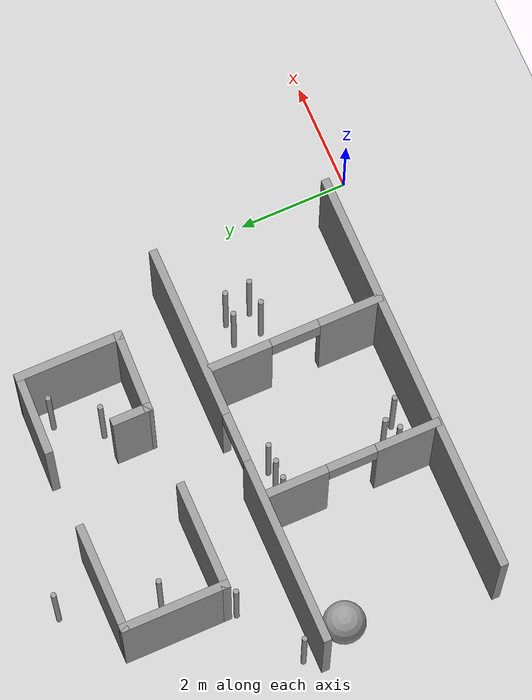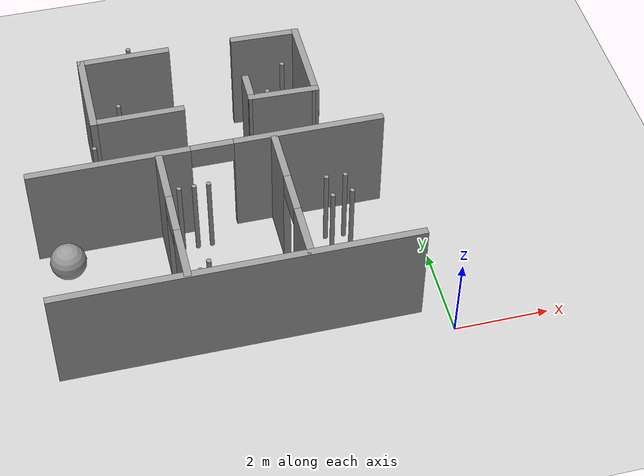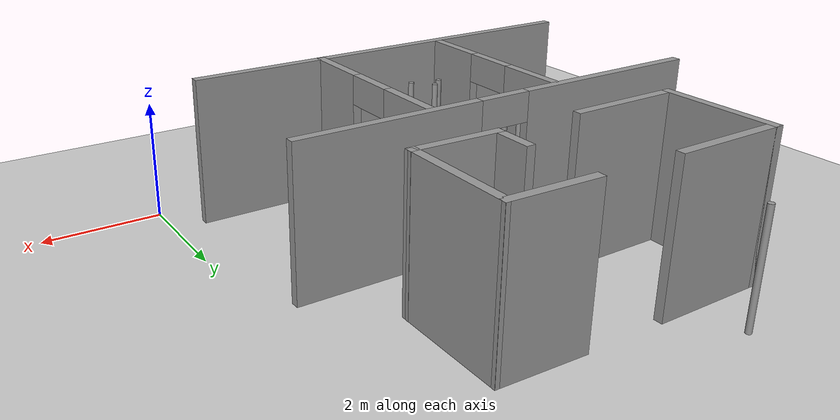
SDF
<sdf version="1.7">
 <world name="default">
  <model name="ground_plane">
   <static>1</static>
   <link name="link">
    <collision name="collision">
     <geometry><plane><normal>0 0 1</normal><size>100 100</size></plane></geometry>
     <surface>
      <contact><collide_bitmask>65535</collide_bitmask></contact>
      <friction><ode><mu>100</mu><mu2>50</mu2></ode></friction>
     </surface>
    </collision>
    <visual name="visual">
     <cast_shadows>0</cast_shadows>
     <geometry><plane><normal>0 0 1</normal><size>100 100</size></plane></geometry>
     <material>
      <script><uri>file://media/materials/scripts/gazebo.material</uri><name>Gazebo/Grey</name></script>
     </material>
    </visual>
   </link>
  </model>
  <model name="Untitled">
   <link name="Wall_10">
    <pose>-5.33751 2.0447 0 0 -0 1.5708</pose>
    <visual name="Wall_10_Visual_0">
     <pose>-1.02779 0 1.25 0 -0 0</pose>
     <geometry><box><size>1.19441 0.15 2.5</size></box></geometry>
     <material>
      <script><uri>file://media/materials/scripts/gazebo.material</uri><name>Gazebo/Grey</name></script>
      <ambient>1 1 1 1</ambient>
      <shader type="pixel"/>
     </material>
     <meta><layer>0</layer></meta>
    </visual>
    <visual name="Wall_10_Visual_1">
     <pose>1.04721 0 1.25 0 -0 0</pose>
     <geometry><box><size>1.15559 0.15 2.5</size></box></geometry>
     <material>
      <script><uri>file://media/materials/scripts/gazebo.material</uri><name>Gazebo/Grey</name></script>
      <ambient>1 1 1 1</ambient>
      <shader type="pixel"/>
     </material>
     <meta><layer>0</layer></meta>
    </visual>
    <visual name="Wall_10_Visual_2">
     <pose>0.019412 0 2.25 0 -0 0</pose>
     <geometry><box><size>0.9 0.15 0.5</size></box></geometry>
     <material>
      <script><uri>file://media/materials/scripts/gazebo.material</uri><name>Gazebo/Grey</name></script>
      <ambient>1 1 1 1</ambient>
      <shader type="pixel"/>
     </material>
     <meta><layer>0</layer></meta>
    </visual>
    <collision name="Wall_10_Collision_0">
     <pose>-1.02779 0 1.25 0 -0 0</pose>
     <geometry><box><size>1.19441 0.15 2.5</size></box></geometry>
     <surface>
      <friction>
       <ode><mu>1</mu><mu2>1</mu2><fdir1>0 0 0</fdir1><slip1>0</slip1><slip2>0</slip2></ode>
       <torsional>
        <coefficient>1</coefficient>
        <patch_radius>0</patch_radius>
        <surface_radius>0</surface_radius>
        <use_patch_radius>1</use_patch_radius>
        <ode><slip>0</slip></ode>
       </torsional>
      </friction>
      <bounce><restitution_coefficient>0</restitution_coefficient><threshold>1e+06</threshold></bounce>
      <contact>
       <collide_without_contact>0</collide_without_contact>
       <collide_without_contact_bitmask>1</collide_without_contact_bitmask>
       <collide_bitmask>1</collide_bitmask>
       <ode>
        <soft_cfm>0</soft_cfm>
        <soft_erp>0.2</soft_erp>
        <kp>1e+13</kp>
        <kd>1</kd>
        <max_vel>0.01</max_vel>
        <min_depth>0</min_depth>
       </ode>
       <bullet>
        <split_impulse>1</split_impulse>
        <split_impulse_penetration_threshold>-0.01</split_impulse_penetration_threshold>
        <soft_cfm>0</soft_cfm>
        <soft_erp>0.2</soft_erp>
        <kp>1e+13</kp>
        <kd>1</kd>
       </bullet>
      </contact>
     </surface>
    </collision>
    <collision name="Wall_10_Collision_1">
     <pose>1.04721 0 1.25 0 -0 0</pose>
     <geometry><box><size>1.15559 0.15 2.5</size></box></geometry>
     <surface>
      <friction>
       <ode><mu>1</mu><mu2>1</mu2><fdir1>0 0 0</fdir1><slip1>0</slip1><slip2>0</slip2></ode>
       <torsional>
        <coefficient>1</coefficient>
        <patch_radius>0</patch_radius>
        <surface_radius>0</surface_radius>
        <use_patch_radius>1</use_patch_radius>
        <ode><slip>0</slip></ode>
       </torsional>
      </friction>
      <bounce><restitution_coefficient>0</restitution_coefficient><threshold>1e+06</threshold></bounce>
      <contact>
       <collide_without_contact>0</collide_without_contact>
       <collide_without_contact_bitmask>1</collide_without_contact_bitmask>
       <collide_bitmask>1</collide_bitmask>
       <ode>
        <soft_cfm>0</soft_cfm>
        <soft_erp>0.2</soft_erp>
        <kp>1e+13</kp>
        <kd>1</kd>
        <max_vel>0.01</max_vel>
        <min_depth>0</min_depth>
       </ode>
       <bullet>
        <split_impulse>1</split_impulse>
        <split_impulse_penetration_threshold>-0.01</split_impulse_penetration_threshold>
        <soft_cfm>0</soft_cfm>
        <soft_erp>0.2</soft_erp>
        <kp>1e+13</kp>
        <kd>1</kd>
       </bullet>
      </contact>
     </surface>
    </collision>
    <collision name="Wall_10_Collision_2">
     <pose>0.019412 0 2.25 0 -0 0</pose>
     <geometry><box><size>0.9 0.15 0.5</size></box></geometry>
     <surface>
      <friction>
       <ode><mu>1</mu><mu2>1</mu2><fdir1>0 0 0</fdir1><slip1>0</slip1><slip2>0</slip2></ode>
       <torsional>
        <coefficient>1</coefficient>
        <patch_radius>0</patch_radius>
        <surface_radius>0</surface_radius>
        <use_patch_radius>1</use_patch_radius>
        <ode><slip>0</slip></ode>
       </torsional>
      </friction>
      <bounce><restitution_coefficient>0</restitution_coefficient><threshold>1e+06</threshold></bounce>
      <contact>
       <collide_without_contact>0</collide_without_contact>
       <collide_without_contact_bitmask>1</collide_without_contact_bitmask>
       <collide_bitmask>1</collide_bitmask>
       <ode>
        <soft_cfm>0</soft_cfm>
        <soft_erp>0.2</soft_erp>
        <kp>1e+13</kp>
        <kd>1</kd>
        <max_vel>0.01</max_vel>
        <min_depth>0</min_depth>
       </ode>
       <bullet>
        <split_impulse>1</split_impulse>
        <split_impulse_penetration_threshold>-0.01</split_impulse_penetration_threshold>
        <soft_cfm>0</soft_cfm>
        <soft_erp>0.2</soft_erp>
        <kp>1e+13</kp>
        <kd>1</kd>
       </bullet>
      </contact>
     </surface>
    </collision>
   </link>
   <link name="Wall_12">
    <pose>-2.91689 2.0447 0 0 -0 1.5708</pose>
    <visual name="Wall_12_Visual_0">
     <pose>-1.02779 0 1.25 0 -0 0</pose>
     <geometry><box><size>1.19441 0.15 2.5</size></box></geometry>
     <material>
      <script><uri>file://media/materials/scripts/gazebo.material</uri><name>Gazebo/Grey</name></script>
      <ambient>1 1 1 1</ambient>
      <shader type="pixel"/>
     </material>
     <meta><layer>0</layer></meta>
    </visual>
    <visual name="Wall_12_Visual_1">
     <pose>1.04721 0 1.25 0 -0 0</pose>
     <geometry><box><size>1.15559 0.15 2.5</size></box></geometry>
     <material>
      <script><uri>file://media/materials/scripts/gazebo.material</uri><name>Gazebo/Grey</name></script>
      <ambient>1 1 1 1</ambient>
      <shader type="pixel"/>
     </material>
     <meta><layer>0</layer></meta>
    </visual>
    <visual name="Wall_12_Visual_2">
     <pose>0.019412 0 2.25 0 -0 0</pose>
     <geometry><box><size>0.9 0.15 0.5</size></box></geometry>
     <material>
      <script><uri>file://media/materials/scripts/gazebo.material</uri><name>Gazebo/Grey</name></script>
      <ambient>1 1 1 1</ambient>
      <shader type="pixel"/>
     </material>
     <meta><layer>0</layer></meta>
    </visual>
    <collision name="Wall_12_Collision_0">
     <pose>-1.02779 0 1.25 0 -0 0</pose>
     <geometry><box><size>1.19441 0.15 2.5</size></box></geometry>
     <surface>
      <friction>
       <ode><mu>1</mu><mu2>1</mu2><fdir1>0 0 0</fdir1><slip1>0</slip1><slip2>0</slip2></ode>
       <torsional>
        <coefficient>1</coefficient>
        <patch_radius>0</patch_radius>
        <surface_radius>0</surface_radius>
        <use_patch_radius>1</use_patch_radius>
        <ode><slip>0</slip></ode>
       </torsional>
      </friction>
      <bounce><restitution_coefficient>0</restitution_coefficient><threshold>1e+06</threshold></bounce>
      <contact>
       <collide_without_contact>0</collide_without_contact>
       <collide_without_contact_bitmask>1</collide_without_contact_bitmask>
       <collide_bitmask>1</collide_bitmask>
       <ode>
        <soft_cfm>0</soft_cfm>
        <soft_erp>0.2</soft_erp>
        <kp>1e+13</kp>
        <kd>1</kd>
        <max_vel>0.01</max_vel>
        <min_depth>0</min_depth>
       </ode>
       <bullet>
        <split_impulse>1</split_impulse>
        <split_impulse_penetration_threshold>-0.01</split_impulse_penetration_threshold>
        <soft_cfm>0</soft_cfm>
        <soft_erp>0.2</soft_erp>
        <kp>1e+13</kp>
        <kd>1</kd>
       </bullet>
      </contact>
     </surface>
    </collision>
    <collision name="Wall_12_Collision_1">
     <pose>1.04721 0 1.25 0 -0 0</pose>
     <geometry><box><size>1.15559 0.15 2.5</size></box></geometry>
     <surface>
      <friction>
       <ode><mu>1</mu><mu2>1</mu2><fdir1>0 0 0</fdir1><slip1>0</slip1><slip2>0</slip2></ode>
       <torsional>
        <coefficient>1</coefficient>
        <patch_radius>0</patch_radius>
        <surface_radius>0</surface_radius>
        <use_patch_radius>1</use_patch_radius>
        <ode><slip>0</slip></ode>
       </torsional>
      </friction>
      <bounce><restitution_coefficient>0</restitution_coefficient><threshold>1e+06</threshold></bounce>
      <contact>
       <collide_without_contact>0</collide_without_contact>
       <collide_without_contact_bitmask>1</collide_without_contact_bitmask>
       <collide_bitmask>1</collide_bitmask>
       <ode>
        <soft_cfm>0</soft_cfm>
        <soft_erp>0.2</soft_erp>
        <kp>1e+13</kp>
        <kd>1</kd>
        <max_vel>0.01</max_vel>
        <min_depth>0</min_depth>
       </ode>
       <bullet>
        <split_impulse>1</split_impulse>
        <split_impulse_penetration_threshold>-0.01</split_impulse_penetration_threshold>
        <soft_cfm>0</soft_cfm>
        <soft_erp>0.2</soft_erp>
        <kp>1e+13</kp>
        <kd>1</kd>
       </bullet>
      </contact>
     </surface>
    </collision>
    <collision name="Wall_12_Collision_2">
     <pose>0.019412 0 2.25 0 -0 0</pose>
     <geometry><box><size>0.9 0.15 0.5</size></box></geometry>
     <surface>
      <friction>
       <ode><mu>1</mu><mu2>1</mu2><fdir1>0 0 0</fdir1><slip1>0</slip1><slip2>0</slip2></ode>
       <torsional>
        <coefficient>1</coefficient>
        <patch_radius>0</patch_radius>
        <surface_radius>0</surface_radius>
        <use_patch_radius>1</use_patch_radius>
        <ode><slip>0</slip></ode>
       </torsional>
      </friction>
      <bounce><restitution_coefficient>0</restitution_coefficient><threshold>1e+06</threshold></bounce>
      <contact>
       <collide_without_contact>0</collide_without_contact>
       <collide_without_contact_bitmask>1</collide_without_contact_bitmask>
       <collide_bitmask>1</collide_bitmask>
       <ode>
        <soft_cfm>0</soft_cfm>
        <soft_erp>0.2</soft_erp>
        <kp>1e+13</kp>
        <kd>1</kd>
        <max_vel>0.01</max_vel>
        <min_depth>0</min_depth>
       </ode>
       <bullet>
        <split_impulse>1</split_impulse>
        <split_impulse_penetration_threshold>-0.01</split_impulse_penetration_threshold>
        <soft_cfm>0</soft_cfm>
        <soft_erp>0.2</soft_erp>
        <kp>1e+13</kp>
        <kd>1</kd>
       </bullet>
      </contact>
     </surface>
    </collision>
   </link>
   <link name="Wall_14">
    <pose>-5.57091 4.91033 0 0 -0 3.14159</pose>
    <visual name="Wall_14_Visual">
     <pose>0 0 1.25 0 -0 0</pose>
     <geometry><box><size>2 0.15 2.5</size></box></geometry>
     <material>
      <script><uri>file://media/materials/scripts/gazebo.material</uri><name>Gazebo/Grey</name></script>
      <ambient>1 1 1 1</ambient>
      <shader type="pixel"/>
     </material>
     <meta><layer>0</layer></meta>
    </visual>
    <collision name="Wall_14_Collision">
     <pose>0 0 1.25 0 -0 0</pose>
     <geometry><box><size>2 0.15 2.5</size></box></geometry>
     <surface>
      <friction>
       <ode><mu>1</mu><mu2>1</mu2><fdir1>0 0 0</fdir1><slip1>0</slip1><slip2>0</slip2></ode>
       <torsional>
        <coefficient>1</coefficient>
        <patch_radius>0</patch_radius>
        <surface_radius>0</surface_radius>
        <use_patch_radius>1</use_patch_radius>
        <ode><slip>0</slip></ode>
       </torsional>
      </friction>
      <bounce><restitution_coefficient>0</restitution_coefficient><threshold>1e+06</threshold></bounce>
      <contact>
       <collide_without_contact>0</collide_without_contact>
       <collide_without_contact_bitmask>1</collide_without_contact_bitmask>
       <collide_bitmask>1</collide_bitmask>
       <ode>
        <soft_cfm>0</soft_cfm>
        <soft_erp>0.2</soft_erp>
        <kp>1e+13</kp>
        <kd>1</kd>
        <max_vel>0.01</max_vel>
        <min_depth>0</min_depth>
       </ode>
       <bullet>
        <split_impulse>1</split_impulse>
        <split_impulse_penetration_threshold>-0.01</split_impulse_penetration_threshold>
        <soft_cfm>0</soft_cfm>
        <soft_erp>0.2</soft_erp>
        <kp>1e+13</kp>
        <kd>1</kd>
       </bullet>
      </contact>
     </surface>
    </collision>
   </link>
   <link name="Wall_15">
    <pose>-6.49591 5.83533 0 0 -0 1.5708</pose>
    <visual name="Wall_15_Visual">
     <pose>0 0 1.25 0 -0 0</pose>
     <geometry><box><size>2 0.15 2.5</size></box></geometry>
     <material>
      <script><uri>file://media/materials/scripts/gazebo.material</uri><name>Gazebo/Grey</name></script>
      <ambient>1 1 1 1</ambient>
      <shader type="pixel"/>
     </material>
     <meta><layer>0</layer></meta>
    </visual>
    <collision name="Wall_15_Collision">
     <pose>0 0 1.25 0 -0 0</pose>
     <geometry><box><size>2 0.15 2.5</size></box></geometry>
     <surface>
      <friction>
       <ode><mu>1</mu><mu2>1</mu2><fdir1>0 0 0</fdir1><slip1>0</slip1><slip2>0</slip2></ode>
       <torsional>
        <coefficient>1</coefficient>
        <patch_radius>0</patch_radius>
        <surface_radius>0</surface_radius>
        <use_patch_radius>1</use_patch_radius>
        <ode><slip>0</slip></ode>
       </torsional>
      </friction>
      <bounce><restitution_coefficient>0</restitution_coefficient><threshold>1e+06</threshold></bounce>
      <contact>
       <collide_without_contact>0</collide_without_contact>
       <collide_without_contact_bitmask>1</collide_without_contact_bitmask>
       <collide_bitmask>1</collide_bitmask>
       <ode>
        <soft_cfm>0</soft_cfm>
        <soft_erp>0.2</soft_erp>
        <kp>1e+13</kp>
        <kd>1</kd>
        <max_vel>0.01</max_vel>
        <min_depth>0</min_depth>
       </ode>
       <bullet>
        <split_impulse>1</split_impulse>
        <split_impulse_penetration_threshold>-0.01</split_impulse_penetration_threshold>
        <soft_cfm>0</soft_cfm>
        <soft_erp>0.2</soft_erp>
        <kp>1e+13</kp>
        <kd>1</kd>
       </bullet>
      </contact>
     </surface>
    </collision>
   </link>
   <link name="Wall_16">
    <pose>-5.57091 6.76033 0 0 -0 0</pose>
    <visual name="Wall_16_Visual">
     <pose>0 0 1.25 0 -0 0</pose>
     <geometry><box><size>2 0.15 2.5</size></box></geometry>
     <material>
      <script><uri>file://media/materials/scripts/gazebo.material</uri><name>Gazebo/Grey</name></script>
      <ambient>1 1 1 1</ambient>
      <shader type="pixel"/>
     </material>
     <meta><layer>0</layer></meta>
    </visual>
    <collision name="Wall_16_Collision">
     <pose>0 0 1.25 0 -0 0</pose>
     <geometry><box><size>2 0.15 2.5</size></box></geometry>
     <surface>
      <friction>
       <ode><mu>1</mu><mu2>1</mu2><fdir1>0 0 0</fdir1><slip1>0</slip1><slip2>0</slip2></ode>
       <torsional>
        <coefficient>1</coefficient>
        <patch_radius>0</patch_radius>
        <surface_radius>0</surface_radius>
        <use_patch_radius>1</use_patch_radius>
        <ode><slip>0</slip></ode>
       </torsional>
      </friction>
      <bounce><restitution_coefficient>0</restitution_coefficient><threshold>1e+06</threshold></bounce>
      <contact>
       <collide_without_contact>0</collide_without_contact>
       <collide_without_contact_bitmask>1</collide_without_contact_bitmask>
       <collide_bitmask>1</collide_bitmask>
       <ode>
        <soft_cfm>0</soft_cfm>
        <soft_erp>0.2</soft_erp>
        <kp>1e+13</kp>
        <kd>1</kd>
        <max_vel>0.01</max_vel>
        <min_depth>0</min_depth>
       </ode>
       <bullet>
        <split_impulse>1</split_impulse>
        <split_impulse_penetration_threshold>-0.01</split_impulse_penetration_threshold>
        <soft_cfm>0</soft_cfm>
        <soft_erp>0.2</soft_erp>
        <kp>1e+13</kp>
        <kd>1</kd>
       </bullet>
      </contact>
     </surface>
    </collision>
   </link>
   <link name="Wall_18">
    <pose>-2.4441 6.72429 0 0 0 -0.031294</pose>
    <visual name="Wall_18_Visual">
     <pose>0 0 1.25 0 -0 0</pose>
     <geometry><box><size>1.52186 0.15 2.5</size></box></geometry>
     <material>
      <script><uri>file://media/materials/scripts/gazebo.material</uri><name>Gazebo/Grey</name></script>
      <ambient>1 1 1 1</ambient>
      <shader type="pixel"/>
     </material>
     <meta><layer>0</layer></meta>
    </visual>
    <collision name="Wall_18_Collision">
     <pose>0 0 1.25 0 -0 0</pose>
     <geometry><box><size>1.52186 0.15 2.5</size></box></geometry>
     <surface>
      <friction>
       <ode><mu>1</mu><mu2>1</mu2><fdir1>0 0 0</fdir1><slip1>0</slip1><slip2>0</slip2></ode>
       <torsional>
        <coefficient>1</coefficient>
        <patch_radius>0</patch_radius>
        <surface_radius>0</surface_radius>
        <use_patch_radius>1</use_patch_radius>
        <ode><slip>0</slip></ode>
       </torsional>
      </friction>
      <bounce><restitution_coefficient>0</restitution_coefficient><threshold>1e+06</threshold></bounce>
      <contact>
       <collide_without_contact>0</collide_without_contact>
       <collide_without_contact_bitmask>1</collide_without_contact_bitmask>
       <collide_bitmask>1</collide_bitmask>
       <ode>
        <soft_cfm>0</soft_cfm>
        <soft_erp>0.2</soft_erp>
        <kp>1e+13</kp>
        <kd>1</kd>
        <max_vel>0.01</max_vel>
        <min_depth>0</min_depth>
       </ode>
       <bullet>
        <split_impulse>1</split_impulse>
        <split_impulse_penetration_threshold>-0.01</split_impulse_penetration_threshold>
        <soft_cfm>0</soft_cfm>
        <soft_erp>0.2</soft_erp>
        <kp>1e+13</kp>
        <kd>1</kd>
       </bullet>
      </contact>
     </surface>
    </collision>
   </link>
   <link name="Wall_19">
    <pose>-1.75851 5.77782 0 0 0 -1.5708</pose>
    <visual name="Wall_19_Visual">
     <pose>0 0 1.25 0 -0 0</pose>
     <geometry><box><size>2 0.15 2.5</size></box></geometry>
     <material>
      <script><uri>file://media/materials/scripts/gazebo.material</uri><name>Gazebo/Grey</name></script>
      <ambient>1 1 1 1</ambient>
      <shader type="pixel"/>
     </material>
     <meta><layer>0</layer></meta>
    </visual>
    <collision name="Wall_19_Collision">
     <pose>0 0 1.25 0 -0 0</pose>
     <geometry><box><size>2 0.15 2.5</size></box></geometry>
     <surface>
      <friction>
       <ode><mu>1</mu><mu2>1</mu2><fdir1>0 0 0</fdir1><slip1>0</slip1><slip2>0</slip2></ode>
       <torsional>
        <coefficient>1</coefficient>
        <patch_radius>0</patch_radius>
        <surface_radius>0</surface_radius>
        <use_patch_radius>1</use_patch_radius>
        <ode><slip>0</slip></ode>
       </torsional>
      </friction>
      <bounce><restitution_coefficient>0</restitution_coefficient><threshold>1e+06</threshold></bounce>
      <contact>
       <collide_without_contact>0</collide_without_contact>
       <collide_without_contact_bitmask>1</collide_without_contact_bitmask>
       <collide_bitmask>1</collide_bitmask>
       <ode>
        <soft_cfm>0</soft_cfm>
        <soft_erp>0.2</soft_erp>
        <kp>1e+13</kp>
        <kd>1</kd>
        <max_vel>0.01</max_vel>
        <min_depth>0</min_depth>
       </ode>
       <bullet>
        <split_impulse>1</split_impulse>
        <split_impulse_penetration_threshold>-0.01</split_impulse_penetration_threshold>
        <soft_cfm>0</soft_cfm>
        <soft_erp>0.2</soft_erp>
        <kp>1e+13</kp>
        <kd>1</kd>
       </bullet>
      </contact>
     </surface>
    </collision>
   </link>
   <link name="Wall_20">
    <pose>-2.4441 4.87429 0 0 -0 3.1103</pose>
    <visual name="Wall_20_Visual">
     <pose>0 0 1.25 0 -0 0</pose>
     <geometry><box><size>1.52186 0.15 2.5</size></box></geometry>
     <material>
      <script><uri>file://media/materials/scripts/gazebo.material</uri><name>Gazebo/Grey</name></script>
      <ambient>1 1 1 1</ambient>
      <shader type="pixel"/>
     </material>
     <meta><layer>0</layer></meta>
    </visual>
    <collision name="Wall_20_Collision">
     <pose>0 0 1.25 0 -0 0</pose>
     <geometry><box><size>1.52186 0.15 2.5</size></box></geometry>
     <surface>
      <friction>
       <ode><mu>1</mu><mu2>1</mu2><fdir1>0 0 0</fdir1><slip1>0</slip1><slip2>0</slip2></ode>
       <torsional>
        <coefficient>1</coefficient>
        <patch_radius>0</patch_radius>
        <surface_radius>0</surface_radius>
        <use_patch_radius>1</use_patch_radius>
        <ode><slip>0</slip></ode>
       </torsional>
      </friction>
      <bounce><restitution_coefficient>0</restitution_coefficient><threshold>1e+06</threshold></bounce>
      <contact>
       <collide_without_contact>0</collide_without_contact>
       <collide_without_contact_bitmask>1</collide_without_contact_bitmask>
       <collide_bitmask>1</collide_bitmask>
       <ode>
        <soft_cfm>0</soft_cfm>
        <soft_erp>0.2</soft_erp>
        <kp>1e+13</kp>
        <kd>1</kd>
        <max_vel>0.01</max_vel>
        <min_depth>0</min_depth>
       </ode>
       <bullet>
        <split_impulse>1</split_impulse>
        <split_impulse_penetration_threshold>-0.01</split_impulse_penetration_threshold>
        <soft_cfm>0</soft_cfm>
        <soft_erp>0.2</soft_erp>
        <kp>1e+13</kp>
        <kd>1</kd>
       </bullet>
      </contact>
     </surface>
    </collision>
   </link>
   <link name="Wall_21">
    <pose>-3.1297 5.19575 0 0 -0 1.5708</pose>
    <visual name="Wall_21_Visual">
     <pose>0 0 1.25 0 -0 0</pose>
     <geometry><box><size>0.75 0.15 2.5</size></box></geometry>
     <material>
      <script><uri>file://media/materials/scripts/gazebo.material</uri><name>Gazebo/Grey</name></script>
      <ambient>1 1 1 1</ambient>
      <shader type="pixel"/>
     </material>
     <meta><layer>0</layer></meta>
    </visual>
    <collision name="Wall_21_Collision">
     <pose>0 0 1.25 0 -0 0</pose>
     <geometry><box><size>0.75 0.15 2.5</size></box></geometry>
     <surface>
      <friction>
       <ode><mu>1</mu><mu2>1</mu2><fdir1>0 0 0</fdir1><slip1>0</slip1><slip2>0</slip2></ode>
       <torsional>
        <coefficient>1</coefficient>
        <patch_radius>0</patch_radius>
        <surface_radius>0</surface_radius>
        <use_patch_radius>1</use_patch_radius>
        <ode><slip>0</slip></ode>
       </torsional>
      </friction>
      <bounce><restitution_coefficient>0</restitution_coefficient><threshold>1e+06</threshold></bounce>
      <contact>
       <collide_without_contact>0</collide_without_contact>
       <collide_without_contact_bitmask>1</collide_without_contact_bitmask>
       <collide_bitmask>1</collide_bitmask>
       <ode>
        <soft_cfm>0</soft_cfm>
        <soft_erp>0.2</soft_erp>
        <kp>1e+13</kp>
        <kd>1</kd>
        <max_vel>0.01</max_vel>
        <min_depth>0</min_depth>
       </ode>
       <bullet>
        <split_impulse>1</split_impulse>
        <split_impulse_penetration_threshold>-0.01</split_impulse_penetration_threshold>
        <soft_cfm>0</soft_cfm>
        <soft_erp>0.2</soft_erp>
        <kp>1e+13</kp>
        <kd>1</kd>
       </bullet>
      </contact>
     </surface>
    </collision>
   </link>
   <link name="Wall_5">
    <pose>-4.32253 3.71333 0 0 -0 0</pose>
    <visual name="Wall_5_Visual_0">
     <pose>-2.04889 0 1.25 0 -0 0</pose>
     <geometry><box><size>3.40223 0.15 2.5</size></box></geometry>
     <material>
      <script><uri>file://media/materials/scripts/gazebo.material</uri><name>Gazebo/Grey</name></script>
      <ambient>1 1 1 1</ambient>
      <shader type="pixel"/>
     </material>
     <meta><layer>0</layer></meta>
    </visual>
    <visual name="Wall_5_Visual_1">
     <pose>2.15111 0 1.25 0 -0 0</pose>
     <geometry><box><size>3.19777 0.15 2.5</size></box></geometry>
     <material>
      <script><uri>file://media/materials/scripts/gazebo.material</uri><name>Gazebo/Grey</name></script>
      <ambient>1 1 1 1</ambient>
      <shader type="pixel"/>
     </material>
     <meta><layer>0</layer></meta>
    </visual>
    <visual name="Wall_5_Visual_2">
     <pose>0.102229 0 2.25 0 -0 0</pose>
     <geometry><box><size>0.9 0.15 0.5</size></box></geometry>
     <material>
      <script><uri>file://media/materials/scripts/gazebo.material</uri><name>Gazebo/Grey</name></script>
      <ambient>1 1 1 1</ambient>
      <shader type="pixel"/>
     </material>
     <meta><layer>0</layer></meta>
    </visual>
    <collision name="Wall_5_Collision_2">
     <pose>0.102229 0 2.25 0 -0 0</pose>
     <geometry><box><size>0.9 0.15 0.5</size></box></geometry>
     <surface>
      <friction>
       <ode><mu>1</mu><mu2>1</mu2><fdir1>0 0 0</fdir1><slip1>0</slip1><slip2>0</slip2></ode>
       <torsional>
        <coefficient>1</coefficient>
        <patch_radius>0</patch_radius>
        <surface_radius>0</surface_radius>
        <use_patch_radius>1</use_patch_radius>
        <ode><slip>0</slip></ode>
       </torsional>
      </friction>
      <bounce><restitution_coefficient>0</restitution_coefficient><threshold>1e+06</threshold></bounce>
      <contact>
       <collide_without_contact>0</collide_without_contact>
       <collide_without_contact_bitmask>1</collide_without_contact_bitmask>
       <collide_bitmask>1</collide_bitmask>
       <ode>
        <soft_cfm>0</soft_cfm>
        <soft_erp>0.2</soft_erp>
        <kp>1e+13</kp>
        <kd>1</kd>
        <max_vel>0.01</max_vel>
        <min_depth>0</min_depth>
       </ode>
       <bullet>
        <split_impulse>1</split_impulse>
        <split_impulse_penetration_threshold>-0.01</split_impulse_penetration_threshold>
        <soft_cfm>0</soft_cfm>
        <soft_erp>0.2</soft_erp>
        <kp>1e+13</kp>
        <kd>1</kd>
       </bullet>
      </contact>
     </surface>
    </collision>
    <collision name="Wall_5_Collision_0">
     <pose>-2.04889 0 1.25 0 -0 0</pose>
     <geometry><box><size>3.40223 0.15 2.5</size></box></geometry>
     <surface>
      <friction>
       <ode><mu>1</mu><mu2>1</mu2><fdir1>0 0 0</fdir1><slip1>0</slip1><slip2>0</slip2></ode>
       <torsional>
        <coefficient>1</coefficient>
        <patch_radius>0</patch_radius>
        <surface_radius>0</surface_radius>
        <use_patch_radius>1</use_patch_radius>
        <ode><slip>0</slip></ode>
       </torsional>
      </friction>
      <bounce><restitution_coefficient>0</restitution_coefficient><threshold>1e+06</threshold></bounce>
      <contact>
       <collide_without_contact>0</collide_without_contact>
       <collide_without_contact_bitmask>1</collide_without_contact_bitmask>
       <collide_bitmask>1</collide_bitmask>
       <ode>
        <soft_cfm>0</soft_cfm>
        <soft_erp>0.2</soft_erp>
        <kp>1e+13</kp>
        <kd>1</kd>
        <max_vel>0.01</max_vel>
        <min_depth>0</min_depth>
       </ode>
       <bullet>
        <split_impulse>1</split_impulse>
        <split_impulse_penetration_threshold>-0.01</split_impulse_penetration_threshold>
        <soft_cfm>0</soft_cfm>
        <soft_erp>0.2</soft_erp>
        <kp>1e+13</kp>
        <kd>1</kd>
       </bullet>
      </contact>
     </surface>
    </collision>
    <collision name="Wall_5_Collision_1">
     <pose>2.15111 0 1.25 0 -0 0</pose>
     <geometry><box><size>3.19777 0.15 2.5</size></box></geometry>
     <surface>
      <friction>
       <ode><mu>1</mu><mu2>1</mu2><fdir1>0 0 0</fdir1><slip1>0</slip1><slip2>0</slip2></ode>
       <torsional>
        <coefficient>1</coefficient>
        <patch_radius>0</patch_radius>
        <surface_radius>0</surface_radius>
        <use_patch_radius>1</use_patch_radius>
        <ode><slip>0</slip></ode>
       </torsional>
      </friction>
      <bounce><restitution_coefficient>0</restitution_coefficient><threshold>1e+06</threshold></bounce>
      <contact>
       <collide_without_contact>0</collide_without_contact>
       <collide_without_contact_bitmask>1</collide_without_contact_bitmask>
       <collide_bitmask>1</collide_bitmask>
       <ode>
        <soft_cfm>0</soft_cfm>
        <soft_erp>0.2</soft_erp>
        <kp>1e+13</kp>
        <kd>1</kd>
        <max_vel>0.01</max_vel>
        <min_depth>0</min_depth>
       </ode>
       <bullet>
        <split_impulse>1</split_impulse>
        <split_impulse_penetration_threshold>-0.01</split_impulse_penetration_threshold>
        <soft_cfm>0</soft_cfm>
        <soft_erp>0.2</soft_erp>
        <kp>1e+13</kp>
        <kd>1</kd>
       </bullet>
      </contact>
     </surface>
    </collision>
   </link>
   <link name="Wall_8">
    <pose>-4.32253 0.463325 0 0 -0 3.14159</pose>
    <visual name="Wall_8_Visual">
     <pose>0 0 1.25 0 -0 0</pose>
     <geometry><box><size>7.5 0.15 2.5</size></box></geometry>
     <material>
      <script><uri>file://media/materials/scripts/gazebo.material</uri><name>Gazebo/Grey</name></script>
      <ambient>1 1 1 1</ambient>
      <shader type="pixel"/>
     </material>
     <meta><layer>0</layer></meta>
    </visual>
    <collision name="Wall_8_Collision">
     <pose>0 0 1.25 0 -0 0</pose>
     <geometry><box><size>7.5 0.15 2.5</size></box></geometry>
     <surface>
      <friction>
       <ode><mu>1</mu><mu2>1</mu2><fdir1>0 0 0</fdir1><slip1>0</slip1><slip2>0</slip2></ode>
       <torsional>
        <coefficient>1</coefficient>
        <patch_radius>0</patch_radius>
        <surface_radius>0</surface_radius>
        <use_patch_radius>1</use_patch_radius>
        <ode><slip>0</slip></ode>
       </torsional>
      </friction>
      <bounce><restitution_coefficient>0</restitution_coefficient><threshold>1e+06</threshold></bounce>
      <contact>
       <collide_without_contact>0</collide_without_contact>
       <collide_without_contact_bitmask>1</collide_without_contact_bitmask>
       <collide_bitmask>1</collide_bitmask>
       <ode>
        <soft_cfm>0</soft_cfm>
        <soft_erp>0.2</soft_erp>
        <kp>1e+13</kp>
        <kd>1</kd>
        <max_vel>0.01</max_vel>
        <min_depth>0</min_depth>
       </ode>
       <bullet>
        <split_impulse>1</split_impulse>
        <split_impulse_penetration_threshold>-0.01</split_impulse_penetration_threshold>
        <soft_cfm>0</soft_cfm>
        <soft_erp>0.2</soft_erp>
        <kp>1e+13</kp>
        <kd>1</kd>
       </bullet>
      </contact>
     </surface>
    </collision>
   </link>
   <static>1</static>
   <pose>0.030064 0.19251 0 0 -0 0</pose>
  </model>
  <model name="unit_sphere_clone">
   <pose>-7.45757 3.29515 0.385234 0 -0 0</pose>
   <link name="link">
    <inertial>
     <mass>1</mass>
     <inertia><ixx>0.1</ixx><ixy>0</ixy><ixz>0</ixz><iyy>0.1</iyy><iyz>0</iyz><izz>0.1</izz></inertia>
    </inertial>
    <collision name="collision"><geometry><sphere><radius>0.385234</radius></sphere></geometry></collision>
    <visual name="visual">
     <geometry><sphere><radius>0.385234</radius></sphere></geometry>
     <material>
      <script><name>Gazebo/Grey</name><uri>file://media/materials/scripts/gazebo.material</uri></script>
     </material>
    </visual>
   </link>
  </model>
  <model name="unit_cylinder">
   <pose>-1.98111 3.01506 0.958529 -1e-06 1e-06 -0.00453</pose>
   <link name="link">
    <inertial>
     <mass>1</mass>
     <inertia><ixx>0.145833</ixx><ixy>0</ixy><ixz>0</ixz><iyy>0.145833</iyy><iyz>0</iyz><izz>0.125</izz></inertia>
    </inertial>
    <collision name="collision">
     <geometry><cylinder><radius>0.049143</radius><length>1.91706</length></cylinder></geometry>
    </collision>
    <visual name="visual">
     <geometry><cylinder><radius>0.049143</radius><length>1.91706</length></cylinder></geometry>
     <material>
      <script><name>Gazebo/Grey</name><uri>file://media/materials/scripts/gazebo.material</uri></script>
     </material>
    </visual>
   </link>
  </model>
  <model name="unit_cylinder_clone">
   <pose>-1.58212 2.99938 0.958521 0 2e-06 -0.004827</pose>
   <link name="link">
    <inertial>
     <mass>1</mass>
     <inertia><ixx>0.145833</ixx><ixy>0</ixy><ixz>0</ixz><iyy>0.145833</iyy><iyz>0</iyz><izz>0.125</izz></inertia>
    </inertial>
    <collision name="collision">
     <geometry><cylinder><radius>0.0491429</radius><length>1.91706</length></cylinder></geometry>
    </collision>
    <visual name="visual">
     <geometry><cylinder><radius>0.0491429</radius><length>1.91706</length></cylinder></geometry>
     <material>
      <script><name>Gazebo/Grey</name><uri>file://media/materials/scripts/gazebo.material</uri></script>
     </material>
    </visual>
   </link>
  </model>
  <model name="unit_cylinder_clone_0">
   <pose>-1.55449 2.53192 0.958521 -0 1e-06 -0.004781</pose>
   <link name="link">
    <inertial>
     <mass>1</mass>
     <inertia><ixx>0.145833</ixx><ixy>0</ixy><ixz>0</ixz><iyy>0.145833</iyy><iyz>0</iyz><izz>0.125</izz></inertia>
    </inertial>
    <collision name="collision">
     <geometry><cylinder><radius>0.0491429</radius><length>1.91706</length></cylinder></geometry>
    </collision>
    <visual name="visual">
     <geometry><cylinder><radius>0.0491429</radius><length>1.91706</length></cylinder></geometry>
     <material>
      <script><name>Gazebo/Grey</name><uri>file://media/materials/scripts/gazebo.material</uri></script>
     </material>
    </visual>
   </link>
  </model>
  <model name="unit_cylinder_clone_1">
   <pose>-1.97345 2.49349 0.958521 -0 1e-06 -0.003299</pose>
   <link name="link">
    <inertial>
     <mass>1</mass>
     <inertia><ixx>0.145833</ixx><ixy>0</ixy><ixz>0</ixz><iyy>0.145833</iyy><iyz>0</iyz><izz>0.125</izz></inertia>
    </inertial>
    <collision name="collision">
     <geometry><cylinder><radius>0.0491429</radius><length>1.91706</length></cylinder></geometry>
    </collision>
    <visual name="visual">
     <geometry><cylinder><radius>0.0491429</radius><length>1.91706</length></cylinder></geometry>
     <material>
      <script><name>Gazebo/Grey</name><uri>file://media/materials/scripts/gazebo.material</uri></script>
     </material>
    </visual>
   </link>
  </model>
  <model name="unit_cylinder_clone_2">
   <pose>-5.0068 3.39569 0.958521 0 -1e-06 -0.004771</pose>
   <link name="link">
    <inertial>
     <mass>1</mass>
     <inertia><ixx>0.145833</ixx><ixy>0</ixy><ixz>0</ixz><iyy>0.145833</iyy><iyz>0</iyz><izz>0.125</izz></inertia>
    </inertial>
    <collision name="collision">
     <geometry><cylinder><radius>0.0491429</radius><length>1.91706</length></cylinder></geometry>
    </collision>
    <visual name="visual">
     <geometry><cylinder><radius>0.0491429</radius><length>1.91706</length></cylinder></geometry>
     <material>
      <script><name>Gazebo/Grey</name><uri>file://media/materials/scripts/gazebo.material</uri></script>
     </material>
    </visual>
   </link>
  </model>
  <model name="unit_cylinder_clone_3">
   <pose>-4.68978 3.39257 0.958529 -1e-06 1e-06 -0.004502</pose>
   <link name="link">
    <inertial>
     <mass>1</mass>
     <inertia><ixx>0.145833</ixx><ixy>0</ixy><ixz>0</ixz><iyy>0.145833</iyy><iyz>0</iyz><izz>0.125</izz></inertia>
    </inertial>
    <collision name="collision">
     <geometry><cylinder><radius>0.0491429</radius><length>1.91706</length></cylinder></geometry>
    </collision>
    <visual name="visual">
     <geometry><cylinder><radius>0.0491429</radius><length>1.91706</length></cylinder></geometry>
     <material>
      <script><name>Gazebo/Grey</name><uri>file://media/materials/scripts/gazebo.material</uri></script>
     </material>
    </visual>
   </link>
  </model>
  <model name="unit_cylinder_clone_4">
   <pose>-4.38618 3.39755 0.958528 -0 2e-06 -0.00446</pose>
   <link name="link">
    <inertial>
     <mass>1</mass>
     <inertia><ixx>0.145833</ixx><ixy>0</ixy><ixz>0</ixz><iyy>0.145833</iyy><iyz>0</iyz><izz>0.125</izz></inertia>
    </inertial>
    <collision name="collision">
     <geometry><cylinder><radius>0.0491429</radius><length>1.91706</length></cylinder></geometry>
    </collision>
    <visual name="visual">
     <geometry><cylinder><radius>0.0491429</radius><length>1.91706</length></cylinder></geometry>
     <material>
      <script><name>Gazebo/Grey</name><uri>file://media/materials/scripts/gazebo.material</uri></script>
     </material>
    </visual>
   </link>
  </model>
  <model name="unit_cylinder_clone_5">
   <pose>-4.99162 1.19509 0.958521 -0 1e-06 -0.004171</pose>
   <link name="link">
    <inertial>
     <mass>1</mass>
     <inertia><ixx>0.145833</ixx><ixy>0</ixy><ixz>0</ixz><iyy>0.145833</iyy><iyz>0</iyz><izz>0.125</izz></inertia>
    </inertial>
    <collision name="collision">
     <geometry><cylinder><radius>0.0491429</radius><length>1.91706</length></cylinder></geometry>
    </collision>
    <visual name="visual">
     <geometry><cylinder><radius>0.0491429</radius><length>1.91706</length></cylinder></geometry>
     <material>
      <script><name>Gazebo/Grey</name><uri>file://media/materials/scripts/gazebo.material</uri></script>
     </material>
    </visual>
   </link>
  </model>
  <model name="unit_cylinder_clone_6">
   <pose>-4.78039 1.37622 0.958521 0 -1e-06 -0.004132</pose>
   <link name="link">
    <inertial>
     <mass>1</mass>
     <inertia><ixx>0.145833</ixx><ixy>0</ixy><ixz>0</ixz><iyy>0.145833</iyy><iyz>0</iyz><izz>0.125</izz></inertia>
    </inertial>
    <collision name="collision">
     <geometry><cylinder><radius>0.0491429</radius><length>1.91706</length></cylinder></geometry>
    </collision>
    <visual name="visual">
     <geometry><cylinder><radius>0.0491429</radius><length>1.91706</length></cylinder></geometry>
     <material>
      <script><name>Gazebo/Grey</name><uri>file://media/materials/scripts/gazebo.material</uri></script>
     </material>
    </visual>
   </link>
  </model>
  <model name="unit_cylinder_clone_7">
   <pose>-4.47987 1.06424 0.958521 0 1e-06 -0.004394</pose>
   <link name="link">
    <inertial>
     <mass>1</mass>
     <inertia><ixx>0.145833</ixx><ixy>0</ixy><ixz>0</ixz><iyy>0.145833</iyy><iyz>0</iyz><izz>0.125</izz></inertia>
    </inertial>
    <collision name="collision">
     <geometry><cylinder><radius>0.0491429</radius><length>1.91706</length></cylinder></geometry>
    </collision>
    <visual name="visual">
     <geometry><cylinder><radius>0.0491429</radius><length>1.91706</length></cylinder></geometry>
     <material>
      <script><name>Gazebo/Grey</name><uri>file://media/materials/scripts/gazebo.material</uri></script>
     </material>
    </visual>
   </link>
  </model>
  <model name="unit_cylinder_clone_19">
   <pose>-5.83618 6.06758 0.95853 -1e-06 -1e-06 -0.003451</pose>
   <link name="link">
    <inertial>
     <mass>1</mass>
     <inertia><ixx>0.145833</ixx><ixy>0</ixy><ixz>0</ixz><iyy>0.145833</iyy><iyz>0</iyz><izz>0.125</izz></inertia>
    </inertial>
    <collision name="collision">
     <geometry><cylinder><radius>0.0491429</radius><length>1.91706</length></cylinder></geometry>
    </collision>
    <visual name="visual">
     <geometry><cylinder><radius>0.0491429</radius><length>1.91706</length></cylinder></geometry>
     <material>
      <script><name>Gazebo/Grey</name><uri>file://media/materials/scripts/gazebo.material</uri></script>
     </material>
    </visual>
   </link>
  </model>
  <model name="unit_cylinder_clone_20">
   <pose>-2.61119 5.78705 0.95853 -1e-06 1e-06 -0.003639</pose>
   <link name="link">
    <inertial>
     <mass>1</mass>
     <inertia><ixx>0.145833</ixx><ixy>0</ixy><ixz>0</ixz><iyy>0.145833</iyy><iyz>0</iyz><izz>0.125</izz></inertia>
    </inertial>
    <collision name="collision">
     <geometry><cylinder><radius>0.0491429</radius><length>1.91706</length></cylinder></geometry>
    </collision>
    <visual name="visual">
     <geometry><cylinder><radius>0.0491429</radius><length>1.91706</length></cylinder></geometry>
     <material>
      <script><name>Gazebo/Grey</name><uri>file://media/materials/scripts/gazebo.material</uri></script>
     </material>
    </visual>
   </link>
  </model>
  <model name="unit_cylinder_clone_21">
   <pose>-2.10825 6.54909 0.958529 -1e-06 -1e-06 -0.002316</pose>
   <link name="link">
    <inertial>
     <mass>1</mass>
     <inertia><ixx>0.145833</ixx><ixy>0</ixy><ixz>0</ixz><iyy>0.145833</iyy><iyz>0</iyz><izz>0.125</izz></inertia>
    </inertial>
    <collision name="collision">
     <geometry><cylinder><radius>0.0491429</radius><length>1.91706</length></cylinder></geometry>
    </collision>
    <visual name="visual">
     <geometry><cylinder><radius>0.0491429</radius><length>1.91706</length></cylinder></geometry>
     <material>
      <script><name>Gazebo/Grey</name><uri>file://media/materials/scripts/gazebo.material</uri></script>
     </material>
    </visual>
   </link>
  </model>
  <model name="unit_cylinder_clone_22">
   <pose>-5.34823 7.79817 0.958521 1e-06 -2e-06 -0.003601</pose>
   <link name="link">
    <inertial>
     <mass>1</mass>
     <inertia><ixx>0.145833</ixx><ixy>0</ixy><ixz>0</ixz><iyy>0.145833</iyy><iyz>0</iyz><izz>0.125</izz></inertia>
    </inertial>
    <collision name="collision">
     <geometry><cylinder><radius>0.0491429</radius><length>1.91706</length></cylinder></geometry>
    </collision>
    <visual name="visual">
     <geometry><cylinder><radius>0.0491429</radius><length>1.91706</length></cylinder></geometry>
     <material>
      <script><name>Gazebo/Grey</name><uri>file://media/materials/scripts/gazebo.material</uri></script>
     </material>
    </visual>
   </link>
  </model>
  <model name="unit_cylinder_clone_23">
   <pose>-6.52367 4.93042 0.95852 2e-06 6e-06 -0.003056</pose>
   <link name="link">
    <inertial>
     <mass>1</mass>
     <inertia><ixx>0.145833</ixx><ixy>0</ixy><ixz>0</ixz><iyy>0.145833</iyy><iyz>0</iyz><izz>0.125</izz></inertia>
    </inertial>
    <collision name="collision">
     <geometry><cylinder><radius>0.0491429</radius><length>1.91706</length></cylinder></geometry>
    </collision>
    <visual name="visual">
     <geometry><cylinder><radius>0.0491429</radius><length>1.91706</length></cylinder></geometry>
     <material>
      <script><name>Gazebo/Grey</name><uri>file://media/materials/scripts/gazebo.material</uri></script>
     </material>
    </visual>
   </link>
  </model>
  <model name="unit_cylinder_clone_24">
   <pose>-7.73648 4.18956 0.958529 -0 1e-06 -0.002364</pose>
   <link name="link">
    <inertial>
     <mass>1</mass>
     <inertia><ixx>0.145833</ixx><ixy>0</ixy><ixz>0</ixz><iyy>0.145833</iyy><iyz>0</iyz><izz>0.125</izz></inertia>
    </inertial>
    <collision name="collision">
     <geometry><cylinder><radius>0.0491429</radius><length>1.91706</length></cylinder></geometry>
    </collision>
    <visual name="visual">
     <geometry><cylinder><radius>0.0491429</radius><length>1.91706</length></cylinder></geometry>
     <material>
      <script><name>Gazebo/Grey</name><uri>file://media/materials/scripts/gazebo.material</uri></script>
     </material>
    </visual>
   </link>
  </model>
 </world>
</sdf>
